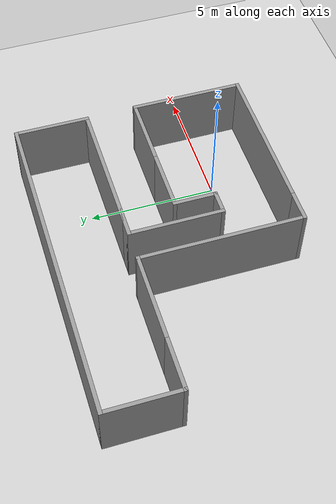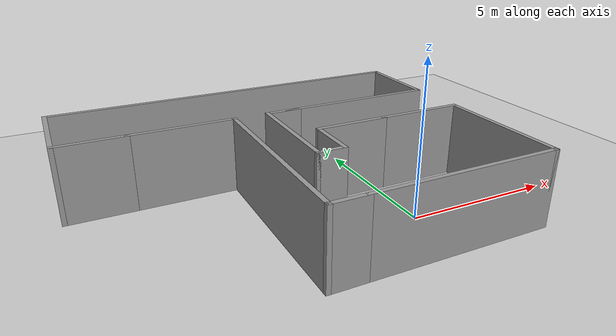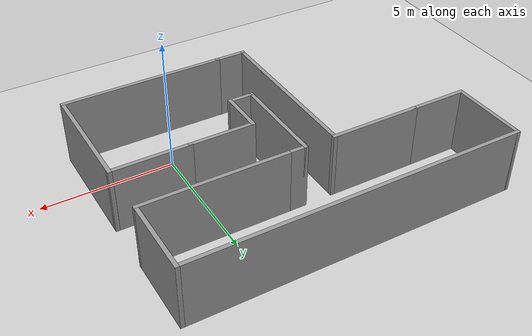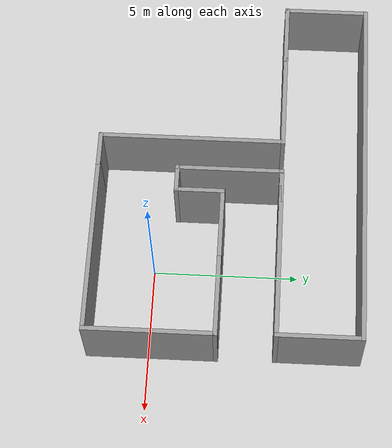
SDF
<sdf version="1.7">
 <world name="default">
  <light name="sun" type="directional">
   <pose>0 0 10 0 -0 0</pose>
   <diffuse>0.8 0.8 0.8 1</diffuse>
   <specular>0.2 0.2 0.2 1</specular>
   <attenuation>
    <range>1000</range>
    <constant>0.9</constant>
    <linear>0.01</linear>
    <quadratic>0.001</quadratic>
   </attenuation>
   <direction>-0.5 0.1 -0.9</direction>
   <spot><inner_angle>0</inner_angle><outer_angle>0</outer_angle><falloff>0</falloff></spot>
  </light>
  <model name="ground_plane">
   <static>1</static>
   <link name="link">
    <collision name="collision">
     <geometry><plane><normal>0 0 1</normal><size>100 100</size></plane></geometry>
     <surface>
      <contact><collide_bitmask>65535</collide_bitmask></contact>
      <friction><ode><mu>100</mu><mu2>50</mu2></ode></friction>
     </surface>
    </collision>
    <visual name="visual">
     <cast_shadows>0</cast_shadows>
     <geometry><plane><normal>0 0 1</normal><size>100 100</size></plane></geometry>
     <material>
      <script><uri>file://media/materials/scripts/gazebo.material</uri><name>Gazebo/Grey</name></script>
     </material>
    </visual>
   </link>
  </model>
  <gravity>0 0 -9.8</gravity>
  <magnetic_field>6e-06 2.3e-05 -4.2e-05</magnetic_field>
  <atmosphere type="adiabatic"/>
  <physics type="ode">
   <max_step_size>0.001</max_step_size>
   <real_time_factor>1</real_time_factor>
   <real_time_update_rate>1000</real_time_update_rate>
  </physics>
  <scene><ambient>0.4 0.4 0.4 1</ambient><background>0.7 0.7 0.7 1</background><shadows>1</shadows></scene>
  <spherical_coordinates>
   <surface_model>EARTH_WGS84</surface_model>
   <latitude_deg>0</latitude_deg>
   <longitude_deg>0</longitude_deg>
   <elevation>0</elevation>
   <heading_deg>0</heading_deg>
  </spherical_coordinates>
  <model name="thin_wall_1">
   <pose>-3.24234 2.54581 0 0 -0 0</pose>
   <link name="Wall_0">
    <collision name="Wall_0_Collision">
     <geometry><box><size>6.25 0.15 2.5</size></box></geometry>
     <pose>0 0 1.25 0 -0 0</pose>
    </collision>
    <visual name="Wall_0_Visual">
     <pose>0 0 1.25 0 -0 0</pose>
     <geometry><box><size>6.25 0.15 2.5</size></box></geometry>
     <material>
      <script><uri>file://media/materials/scripts/gazebo.material</uri><name>Gazebo/Grey</name></script>
      <ambient>1 1 1 1</ambient>
     </material>
     <meta><layer>0</layer></meta>
    </visual>
    <pose>3.275 -4.6 0 0 -0 0</pose>
   </link>
   <link name="Wall_1">
    <collision name="Wall_1_Collision">
     <geometry><box><size>4.5 0.15 2.5</size></box></geometry>
     <pose>0 0 1.25 0 -0 0</pose>
    </collision>
    <visual name="Wall_1_Visual">
     <pose>0 0 1.25 0 -0 0</pose>
     <geometry><box><size>4.5 0.15 2.5</size></box></geometry>
     <material>
      <script><uri>file://media/materials/scripts/gazebo.material</uri><name>Gazebo/Grey</name></script>
      <ambient>1 1 1 1</ambient>
     </material>
     <meta><layer>0</layer></meta>
    </visual>
    <pose>6.325 -2.425 0 0 -0 1.5708</pose>
   </link>
   <link name="Wall_11">
    <collision name="Wall_11_Collision">
     <geometry><box><size>1.25 0.15 2.5</size></box></geometry>
     <pose>0 0 1.25 0 -0 0</pose>
    </collision>
    <visual name="Wall_11_Visual">
     <pose>0 0 1.25 0 -0 0</pose>
     <geometry><box><size>1.25 0.15 2.5</size></box></geometry>
     <material>
      <script><uri>file://media/materials/scripts/gazebo.material</uri><name>Gazebo/Grey</name></script>
      <ambient>1 1 1 1</ambient>
     </material>
     <meta><layer>0</layer></meta>
    </visual>
    <pose>-0.325 -4.6 0 0 -0 3.14159</pose>
   </link>
   <link name="Wall_12">
    <collision name="Wall_12_Collision">
     <geometry><box><size>6.5 0.15 2.5</size></box></geometry>
     <pose>0 0 1.25 0 -0 0</pose>
    </collision>
    <visual name="Wall_12_Visual">
     <pose>0 0 1.25 0 -0 0</pose>
     <geometry><box><size>6.5 0.15 2.5</size></box></geometry>
     <material>
      <script><uri>file://media/materials/scripts/gazebo.material</uri><name>Gazebo/Grey</name></script>
      <ambient>1 1 1 1</ambient>
     </material>
     <meta><layer>0</layer></meta>
    </visual>
    <pose>-0.875 -1.425 0 0 -0 1.5708</pose>
   </link>
   <link name="Wall_13">
    <collision name="Wall_13_Collision">
     <geometry><box><size>3.5 0.15 2.5</size></box></geometry>
     <pose>0 0 1.25 0 -0 0</pose>
    </collision>
    <visual name="Wall_13_Visual">
     <pose>0 0 1.25 0 -0 0</pose>
     <geometry><box><size>3.5 0.15 2.5</size></box></geometry>
     <material>
      <script><uri>file://media/materials/scripts/gazebo.material</uri><name>Gazebo/Grey</name></script>
      <ambient>1 1 1 1</ambient>
     </material>
     <meta><layer>0</layer></meta>
    </visual>
    <pose>-2.55 1.75 0 0 -0 3.14159</pose>
   </link>
   <link name="Wall_15">
    <collision name="Wall_15_Collision">
     <geometry><box><size>2.25 0.15 2.5</size></box></geometry>
     <pose>0 0 1.25 0 -0 0</pose>
    </collision>
    <visual name="Wall_15_Visual">
     <pose>0 0 1.25 0 -0 0</pose>
     <geometry><box><size>2.25 0.15 2.5</size></box></geometry>
     <material>
      <script><uri>file://media/materials/scripts/gazebo.material</uri><name>Gazebo/Grey</name></script>
      <ambient>1 1 1 1</ambient>
     </material>
     <meta><layer>0</layer></meta>
    </visual>
    <pose>-5.275 1.75 0 0 -0 3.14159</pose>
   </link>
   <link name="Wall_16">
    <collision name="Wall_16_Collision">
     <geometry><box><size>3 0.15 2.5</size></box></geometry>
     <pose>0 0 1.25 0 -0 0</pose>
    </collision>
    <visual name="Wall_16_Visual">
     <pose>0 0 1.25 0 -0 0</pose>
     <geometry><box><size>3 0.15 2.5</size></box></geometry>
     <material>
      <script><uri>file://media/materials/scripts/gazebo.material</uri><name>Gazebo/Grey</name></script>
      <ambient>1 1 1 1</ambient>
     </material>
     <meta><layer>0</layer></meta>
    </visual>
    <pose>-6.325 3.175 0 0 -0 1.5708</pose>
   </link>
   <link name="Wall_17">
    <collision name="Wall_17_Collision">
     <geometry><box><size>12.75 0.15 2.5</size></box></geometry>
     <pose>0 0 1.25 0 -0 0</pose>
    </collision>
    <visual name="Wall_17_Visual">
     <pose>0 0 1.25 0 -0 0</pose>
     <geometry><box><size>12.75 0.15 2.5</size></box></geometry>
     <material>
      <script><uri>file://media/materials/scripts/gazebo.material</uri><name>Gazebo/Grey</name></script>
      <ambient>1 1 1 1</ambient>
     </material>
     <meta><layer>0</layer></meta>
    </visual>
    <pose>-0.025 4.6 0 0 -0 0</pose>
   </link>
   <link name="Wall_18">
    <collision name="Wall_18_Collision">
     <geometry><box><size>3 0.15 2.5</size></box></geometry>
     <pose>0 0 1.25 0 -0 0</pose>
    </collision>
    <visual name="Wall_18_Visual">
     <pose>0 0 1.25 0 -0 0</pose>
     <geometry><box><size>3 0.15 2.5</size></box></geometry>
     <material>
      <script><uri>file://media/materials/scripts/gazebo.material</uri><name>Gazebo/Grey</name></script>
      <ambient>1 1 1 1</ambient>
     </material>
     <meta><layer>0</layer></meta>
    </visual>
    <pose>6.275 3.175 0 0 -0 -1.5708</pose>
   </link>
   <link name="Wall_19">
    <collision name="Wall_19_Collision">
     <geometry><box><size>5.5 0.15 2.5</size></box></geometry>
     <pose>0 0 1.25 0 -0 0</pose>
    </collision>
    <visual name="Wall_19_Visual">
     <pose>0 0 1.25 0 -0 0</pose>
     <geometry><box><size>5.5 0.15 2.5</size></box></geometry>
     <material>
      <script><uri>file://media/materials/scripts/gazebo.material</uri><name>Gazebo/Grey</name></script>
      <ambient>1 1 1 1</ambient>
     </material>
     <meta><layer>0</layer></meta>
    </visual>
    <pose>3.6 1.75 0 0 -0 3.14159</pose>
   </link>
   <link name="Wall_2">
    <collision name="Wall_2_Collision">
     <geometry><box><size>3 0.15 2.5</size></box></geometry>
     <pose>0 0 1.25 0 -0 0</pose>
    </collision>
    <visual name="Wall_2_Visual">
     <pose>0 0 1.25 0 -0 0</pose>
     <geometry><box><size>3 0.15 2.5</size></box></geometry>
     <material>
      <script><uri>file://media/materials/scripts/gazebo.material</uri><name>Gazebo/Grey</name></script>
      <ambient>1 1 1 1</ambient>
     </material>
     <meta><layer>0</layer></meta>
    </visual>
    <pose>4.9 -0.25 0 0 -0 3.14159</pose>
   </link>
   <link name="Wall_4">
    <collision name="Wall_4_Collision">
     <geometry><box><size>2.5 0.15 2.5</size></box></geometry>
     <pose>0 0 1.25 0 -0 0</pose>
    </collision>
    <visual name="Wall_4_Visual">
     <pose>0 0 1.25 0 -0 0</pose>
     <geometry><box><size>2.5 0.15 2.5</size></box></geometry>
     <material>
      <script><uri>file://media/materials/scripts/gazebo.material</uri><name>Gazebo/Grey</name></script>
      <ambient>1 1 1 1</ambient>
     </material>
     <meta><layer>0</layer></meta>
    </visual>
    <pose>2.3 -0.25 0 0 -0 3.14159</pose>
   </link>
   <link name="Wall_5">
    <collision name="Wall_5_Collision">
     <geometry><box><size>1.75 0.15 2.5</size></box></geometry>
     <pose>0 0 1.25 0 -0 0</pose>
    </collision>
    <visual name="Wall_5_Visual">
     <pose>0 0 1.25 0 -0 0</pose>
     <geometry><box><size>1.75 0.15 2.5</size></box></geometry>
     <material>
      <script><uri>file://media/materials/scripts/gazebo.material</uri><name>Gazebo/Grey</name></script>
      <ambient>1 1 1 1</ambient>
     </material>
     <meta><layer>0</layer></meta>
    </visual>
    <pose>1.125 -1.05 0 0 -0 -1.5708</pose>
   </link>
   <link name="Wall_6">
    <collision name="Wall_6_Collision">
     <geometry><box><size>1 0.15 2.5</size></box></geometry>
     <pose>0 0 1.25 0 -0 0</pose>
    </collision>
    <visual name="Wall_6_Visual">
     <pose>0 0 1.25 0 -0 0</pose>
     <geometry><box><size>1 0.15 2.5</size></box></geometry>
     <material>
      <script><uri>file://media/materials/scripts/gazebo.material</uri><name>Gazebo/Grey</name></script>
      <ambient>1 1 1 1</ambient>
     </material>
     <meta><layer>0</layer></meta>
    </visual>
    <pose>0.7 -1.85 0 0 -0 3.14159</pose>
   </link>
   <link name="Wall_8">
    <collision name="Wall_8_Collision">
     <geometry><box><size>3.75 0.15 2.5</size></box></geometry>
     <pose>0 0 1.25 0 -0 0</pose>
    </collision>
    <visual name="Wall_8_Visual">
     <pose>0 0 1.25 0 -0 0</pose>
     <geometry><box><size>3.75 0.15 2.5</size></box></geometry>
     <material>
      <script><uri>file://media/materials/scripts/gazebo.material</uri><name>Gazebo/Grey</name></script>
      <ambient>1 1 1 1</ambient>
     </material>
     <meta><layer>0</layer></meta>
    </visual>
    <pose>0.275 -0.05 0 0 -0 1.5708</pose>
   </link>
   <link name="Wall_9">
    <collision name="Wall_9_Collision">
     <geometry><box><size>1.25 0.15 2.5</size></box></geometry>
     <pose>0 0 1.25 0 -0 0</pose>
    </collision>
    <visual name="Wall_9_Visual">
     <pose>0 0 1.25 0 -0 0</pose>
     <geometry><box><size>1.25 0.15 2.5</size></box></geometry>
     <material>
      <script><uri>file://media/materials/scripts/gazebo.material</uri><name>Gazebo/Grey</name></script>
      <ambient>1 1 1 1</ambient>
     </material>
     <meta><layer>0</layer></meta>
    </visual>
    <pose>0.825 1.75 0 0 -0 0</pose>
   </link>
   <static>1</static>
  </model>
 </world>
</sdf>
